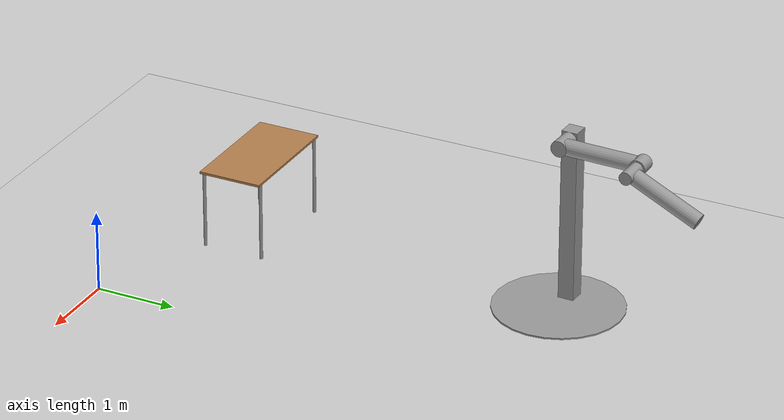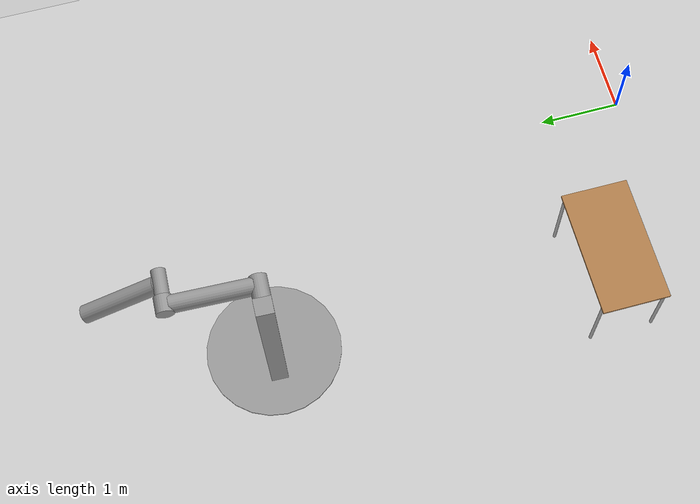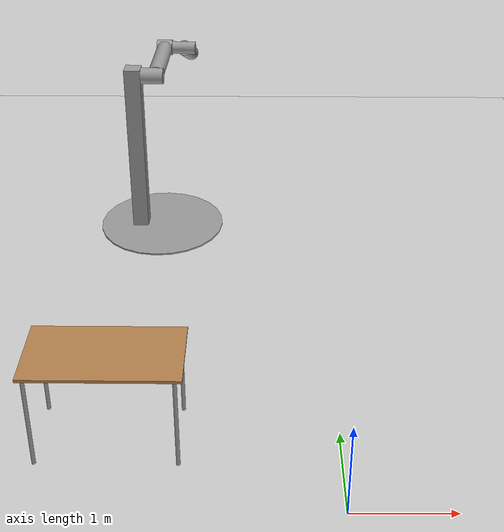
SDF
<sdf version="1.6">
 <world name="default">
  <model name="ground_plane">
   <static>1</static>
   <link name="link">
    <collision name="collision">
     <geometry><plane><normal>0 0 1</normal><size>100 100</size></plane></geometry>
     <surface><friction><ode><mu>100</mu><mu2>50</mu2></ode></friction></surface>
    </collision>
    <visual name="visual">
     <cast_shadows>0</cast_shadows>
     <geometry><plane><normal>0 0 1</normal><size>100 100</size></plane></geometry>
     <material>
      <script><uri>file://media/materials/scripts/gazebo.material</uri><name>Gazebo/Grey</name></script>
     </material>
    </visual>
   </link>
  </model>
  <model name="table_clone">
   <static>1</static>
   <link name="link">
    <collision name="surface">
     <pose>0 0 1 0 -0 0</pose>
     <geometry><box><size>1.5 0.8 0.03</size></box></geometry>
     <surface><friction><ode><mu>0.6</mu><mu2>0.6</mu2></ode></friction></surface>
    </collision>
    <visual name="visual1">
     <pose>0 0 1 0 -0 0</pose>
     <geometry><box><size>1.5 0.8 0.03</size></box></geometry>
     <material>
      <script><uri>file://media/materials/scripts/gazebo.material</uri><name>Gazebo/Wood</name></script>
     </material>
    </visual>
    <collision name="front_left_leg">
     <pose>0.68 0.38 0.5 0 -0 0</pose>
     <geometry><cylinder><radius>0.02</radius><length>1</length></cylinder></geometry>
    </collision>
    <visual name="front_left_leg">
     <pose>0.68 0.38 0.5 0 -0 0</pose>
     <geometry><cylinder><radius>0.02</radius><length>1</length></cylinder></geometry>
     <material>
      <script><uri>file://media/materials/scripts/gazebo.material</uri><name>Gazebo/Grey</name></script>
     </material>
    </visual>
    <collision name="front_right_leg">
     <pose>0.68 -0.38 0.5 0 -0 0</pose>
     <geometry><cylinder><radius>0.02</radius><length>1</length></cylinder></geometry>
    </collision>
    <visual name="front_right_leg">
     <pose>0.68 -0.38 0.5 0 -0 0</pose>
     <geometry><cylinder><radius>0.02</radius><length>1</length></cylinder></geometry>
     <material>
      <script><uri>file://media/materials/scripts/gazebo.material</uri><name>Gazebo/Grey</name></script>
     </material>
    </visual>
    <collision name="back_right_leg">
     <pose>-0.68 -0.38 0.5 0 -0 0</pose>
     <geometry><cylinder><radius>0.02</radius><length>1</length></cylinder></geometry>
    </collision>
    <visual name="back_right_leg">
     <pose>-0.68 -0.38 0.5 0 -0 0</pose>
     <geometry><cylinder><radius>0.02</radius><length>1</length></cylinder></geometry>
     <material>
      <script><uri>file://media/materials/scripts/gazebo.material</uri><name>Gazebo/Grey</name></script>
     </material>
    </visual>
    <collision name="back_left_leg">
     <pose>-0.68 0.38 0.5 0 -0 0</pose>
     <geometry><cylinder><radius>0.02</radius><length>1</length></cylinder></geometry>
    </collision>
    <visual name="back_left_leg">
     <pose>-0.68 0.38 0.5 0 -0 0</pose>
     <geometry><cylinder><radius>0.02</radius><length>1</length></cylinder></geometry>
     <material>
      <script><uri>file://media/materials/scripts/gazebo.material</uri><name>Gazebo/Grey</name></script>
     </material>
    </visual>
   </link>
   <pose>-2.22281 0.96069 0 0 -0 0</pose>
  </model>
  <model name="double_pendulum_with_base">
   <link name="base">
    <inertial>
     <mass>100</mass>
     <inertia><ixx>1</ixx><ixy>0</ixy><ixz>0</ixz><iyy>1</iyy><iyz>0</iyz><izz>1</izz></inertia>
    </inertial>
    <visual name="vis_plate_on_ground">
     <pose>0 0 0.01 0 -0 0</pose>
     <geometry><cylinder><radius>0.8</radius><length>0.02</length></cylinder></geometry>
     <material>
      <script><uri>file://media/materials/scripts/gazebo.material</uri><name>Gazebo/Grey</name></script>
     </material>
    </visual>
    <visual name="vis_pole">
     <pose>-0.275 0 1.1 0 -0 0</pose>
     <geometry><box><size>0.2 0.2 2.2</size></box></geometry>
     <material>
      <script><uri>file://media/materials/scripts/gazebo.material</uri><name>Gazebo/Grey</name></script>
     </material>
    </visual>
    <collision name="col_plate_on_ground">
     <pose>0 0 0.01 0 -0 0</pose>
     <geometry><cylinder><radius>0.8</radius><length>0.02</length></cylinder></geometry>
    </collision>
    <collision name="col_pole">
     <pose>-0.275 0 1.1 0 -0 0</pose>
     <geometry><box><size>0.2 0.2 2.2</size></box></geometry>
    </collision>
   </link>
   <link name="upper_link">
    <pose>0 0 2.1 -1.5708 0 0</pose>
    <inertial>
     <pose>0 0 0.5 0 -0 0</pose>
     <inertia><ixx>1</ixx><ixy>0</ixy><ixz>0</ixz><iyy>1</iyy><iyz>0</iyz><izz>1</izz></inertia>
     <mass>1</mass>
    </inertial>
    <visual name="vis_upper_joint">
     <pose>-0.05 0 0 3.14159 1.57079 3.14159</pose>
     <geometry><cylinder><radius>0.1</radius><length>0.3</length></cylinder></geometry>
     <material>
      <script><uri>file://media/materials/scripts/gazebo.material</uri><name>Gazebo/Grey</name></script>
     </material>
    </visual>
    <visual name="vis_lower_joint">
     <pose>0 0 1 3.14159 1.57079 3.14159</pose>
     <geometry><cylinder><radius>0.1</radius><length>0.2</length></cylinder></geometry>
     <material>
      <script><uri>file://media/materials/scripts/gazebo.material</uri><name>Gazebo/Grey</name></script>
     </material>
    </visual>
    <visual name="vis_cylinder">
     <pose>0 0 0.5 0 -0 0</pose>
     <geometry><cylinder><radius>0.1</radius><length>0.9</length></cylinder></geometry>
     <material>
      <script><uri>file://media/materials/scripts/gazebo.material</uri><name>Gazebo/Grey</name></script>
     </material>
    </visual>
    <collision name="col_upper_joint">
     <pose>-0.05 0 0 3.14159 1.57079 3.14159</pose>
     <geometry><cylinder><radius>0.1</radius><length>0.3</length></cylinder></geometry>
    </collision>
    <collision name="col_lower_joint">
     <pose>0 0 1 3.14159 1.57079 3.14159</pose>
     <geometry><cylinder><radius>0.1</radius><length>0.2</length></cylinder></geometry>
    </collision>
    <collision name="col_cylinder">
     <pose>0 0 0.5 0 -0 0</pose>
     <geometry><cylinder><radius>0.1</radius><length>0.9</length></cylinder></geometry>
    </collision>
   </link>
   <link name="lower_link">
    <pose>0.25 1 2.1 -2 0 0</pose>
    <inertial>
     <pose>0 0 0.5 0 -0 0</pose>
     <inertia><ixx>1</ixx><ixy>0</ixy><ixz>0</ixz><iyy>1</iyy><iyz>0</iyz><izz>1</izz></inertia>
     <mass>1</mass>
    </inertial>
    <visual name="vis_lower_joint">
     <pose>0 0 0 3.14159 1.57079 3.14159</pose>
     <geometry><cylinder><radius>0.08</radius><length>0.3</length></cylinder></geometry>
     <material>
      <script><uri>file://media/materials/scripts/gazebo.material</uri><name>Gazebo/Grey</name></script>
     </material>
    </visual>
    <visual name="vis_cylinder">
     <pose>0 0 0.5 0 -0 0</pose>
     <geometry><cylinder><radius>0.1</radius><length>0.9</length></cylinder></geometry>
     <material>
      <script><uri>file://media/materials/scripts/gazebo.material</uri><name>Gazebo/Grey</name></script>
     </material>
    </visual>
    <collision name="col_lower_joint">
     <pose>0 0 0 3.14159 1.57079 3.14159</pose>
     <geometry><cylinder><radius>0.08</radius><length>0.3</length></cylinder></geometry>
    </collision>
    <collision name="col_cylinder">
     <pose>0 0 0.5 0 -0 0</pose>
     <geometry><cylinder><radius>0.1</radius><length>0.9</length></cylinder></geometry>
    </collision>
   </link>
   <joint name="upper_joint" type="revolute">
    <parent>base</parent>
    <child>upper_link</child>
    <axis>
     <xyz>1 0 0</xyz>
     <use_parent_model_frame>0</use_parent_model_frame>
     <limit><lower>-1e+16</lower><upper>1e+16</upper></limit>
     <dynamics><spring_reference>0</spring_reference><spring_stiffness>0</spring_stiffness></dynamics>
    </axis>
   </joint>
   <joint name="lower_joint" type="revolute">
    <parent>upper_link</parent>
    <child>lower_link</child>
    <axis>
     <xyz>1 0 0</xyz>
     <use_parent_model_frame>0</use_parent_model_frame>
     <limit><lower>-1e+16</lower><upper>1e+16</upper></limit>
     <dynamics><spring_reference>0</spring_reference><spring_stiffness>0</spring_stiffness></dynamics>
    </axis>
   </joint>
   <pose>-2.07675 5.00415 0 0 0 -0.037049</pose>
  </model>
 </world>
</sdf>
